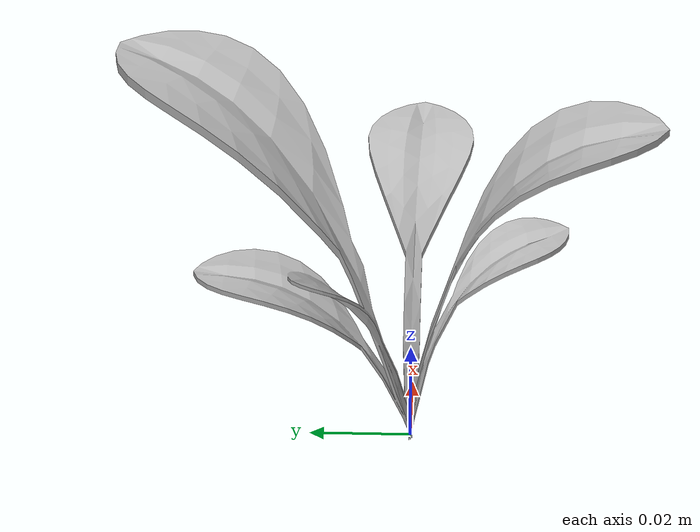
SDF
<sdf version="1.6">
  <model name="sugar_beet_38">
    <static>true</static>
    <link name="body">
      <visual name="visual">
        <geometry>
          <mesh>
            <uri>file:///sugar_beet_38/media/sugar_beet.dae</uri>
          </mesh>
        </geometry>
      </visual>
    </link>
  </model>
</sdf>
